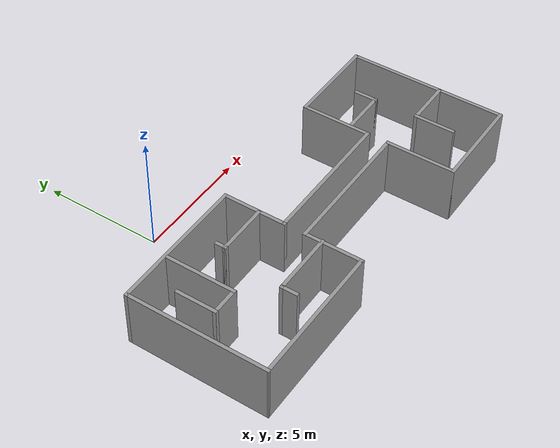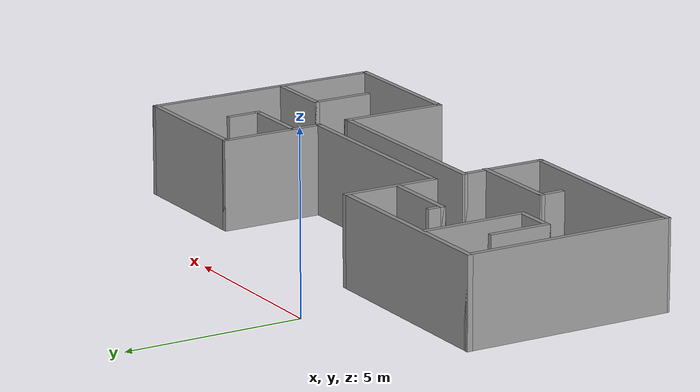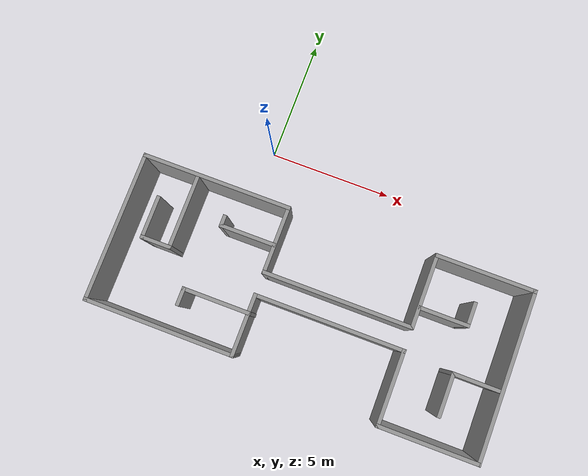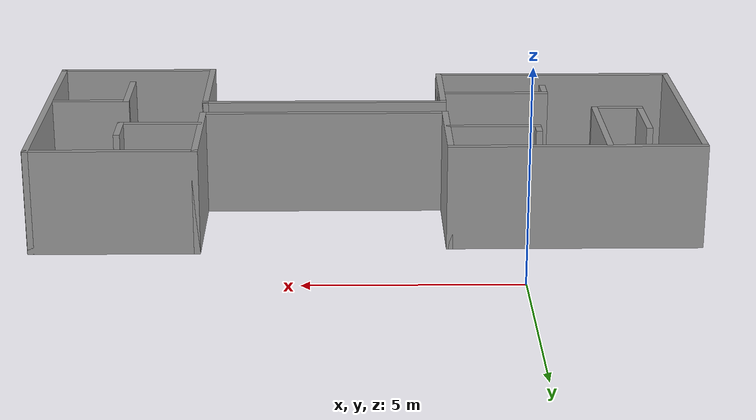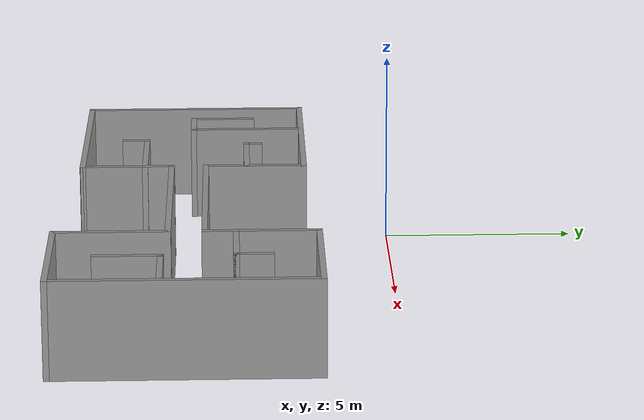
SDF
<?xml version='1.0'?>
<sdf version='1.7'>
  <model name='room'>
    <pose>3.51488 -4.3575 0 0 -0 0</pose>
    <link name='Wall_0'>
      <collision name='Wall_0_Collision'>
        <geometry>
          <box>
            <size>6 0.15 2.5</size>
          </box>
        </geometry>
        <pose>0 0 1.25 0 -0 0</pose>
      </collision>
      <visual name='Wall_0_Visual'>
        <pose>0 0 1.25 0 -0 0</pose>
        <geometry>
          <box>
            <size>6 0.15 2.5</size>
          </box>
        </geometry>
        <material>
          <script>
            <uri>file://media/materials/scripts/gazebo.material</uri>
            <name>Gazebo/Grey</name>
          </script>
          <ambient>1 1 1 1</ambient>
        </material>
        <meta>
          <layer>0</layer>
        </meta>
      </visual>
      <pose>-4.84988 2.0775 0 0 -0 0</pose>
    </link>
    <link name='Wall_10'>
      <collision name='Wall_10_Collision'>
        <geometry>
          <box>
            <size>6 0.15 2.5</size>
          </box>
        </geometry>
        <pose>0 0 1.25 0 -0 0</pose>
      </collision>
      <visual name='Wall_10_Visual'>
        <pose>0 0 1.25 0 -0 0</pose>
        <geometry>
          <box>
            <size>6 0.15 2.5</size>
          </box>
        </geometry>
        <material>
          <script>
            <uri>file://media/materials/scripts/gazebo.material</uri>
            <name>Gazebo/Grey</name>
          </script>
          <ambient>1 1 1 1</ambient>
        </material>
        <meta>
          <layer>0</layer>
        </meta>
      </visual>
      <pose>1.00012 -0.5225 0 0 -0 0</pose>
    </link>
    <link name='Wall_18'>
      <collision name='Wall_18_Collision'>
        <geometry>
          <box>
            <size>6 0.15 2.5</size>
          </box>
        </geometry>
        <pose>0 0 1.25 0 -0 0</pose>
      </collision>
      <visual name='Wall_18_Visual'>
        <pose>0 0 1.25 0 -0 0</pose>
        <geometry>
          <box>
            <size>6 0.15 2.5</size>
          </box>
        </geometry>
        <material>
          <script>
            <uri>file://media/materials/scripts/gazebo.material</uri>
            <name>Gazebo/Grey</name>
          </script>
          <ambient>1 1 1 1</ambient>
        </material>
        <meta>
          <layer>0</layer>
        </meta>
      </visual>
      <pose>1.00012 -1.4325 0 0 -0 0</pose>
    </link>
    <link name='Wall_2'>
      <collision name='Wall_2_Collision'>
        <geometry>
          <box>
            <size>6 0.15 2.5</size>
          </box>
        </geometry>
        <pose>0 0 1.25 0 -0 0</pose>
      </collision>
      <visual name='Wall_2_Visual'>
        <pose>0 0 1.25 0 -0 0</pose>
        <geometry>
          <box>
            <size>6 0.15 2.5</size>
          </box>
        </geometry>
        <material>
          <script>
            <uri>file://media/materials/scripts/gazebo.material</uri>
            <name>Gazebo/Grey</name>
          </script>
          <ambient>1 1 1 1</ambient>
        </material>
        <meta>
          <layer>0</layer>
        </meta>
      </visual>
      <pose>-7.77488 -0.8475 0 0 -0 -1.5708</pose>
    </link>
    <link name='Wall_20'>
      <collision name='Wall_20_Collision'>
        <geometry>
          <box>
            <size>3 0.15 2.5</size>
          </box>
        </geometry>
        <pose>0 0 1.25 0 -0 0</pose>
      </collision>
      <visual name='Wall_20_Visual'>
        <pose>0 0 1.25 0 -0 0</pose>
        <geometry>
          <box>
            <size>3 0.15 2.5</size>
          </box>
        </geometry>
        <material>
          <script>
            <uri>file://media/materials/scripts/gazebo.material</uri>
            <name>Gazebo/Grey</name>
          </script>
          <ambient>1 1 1 1</ambient>
        </material>
        <meta>
          <layer>0</layer>
        </meta>
      </visual>
      <pose>3.92512 -2.8575 0 0 -0 -1.5708</pose>
    </link>
    <link name='Wall_21'>
      <collision name='Wall_21_Collision'>
        <geometry>
          <box>
            <size>4 0.15 2.5</size>
          </box>
        </geometry>
        <pose>0 0 1.25 0 -0 0</pose>
      </collision>
      <visual name='Wall_21_Visual'>
        <pose>0 0 1.25 0 -0 0</pose>
        <geometry>
          <box>
            <size>4 0.15 2.5</size>
          </box>
        </geometry>
        <material>
          <script>
            <uri>file://media/materials/scripts/gazebo.material</uri>
            <name>Gazebo/Grey</name>
          </script>
          <ambient>1 1 1 1</ambient>
        </material>
        <meta>
          <layer>0</layer>
        </meta>
      </visual>
      <pose>5.85012 -4.2825 0 0 -0 0</pose>
    </link>
    <link name='Wall_23'>
      <collision name='Wall_23_Collision'>
        <geometry>
          <box>
            <size>3 0.15 2.5</size>
          </box>
        </geometry>
        <pose>0 0 1.25 0 -0 0</pose>
      </collision>
      <visual name='Wall_23_Visual'>
        <pose>0 0 1.25 0 -0 0</pose>
        <geometry>
          <box>
            <size>3 0.15 2.5</size>
          </box>
        </geometry>
        <material>
          <script>
            <uri>file://media/materials/scripts/gazebo.material</uri>
            <name>Gazebo/Grey</name>
          </script>
          <ambient>1 1 1 1</ambient>
        </material>
        <meta>
          <layer>0</layer>
        </meta>
      </visual>
      <pose>3.92512 0.9025 0 0 -0 1.5708</pose>
    </link>
    <link name='Wall_24'>
      <collision name='Wall_24_Collision'>
        <geometry>
          <box>
            <size>4 0.15 2.5</size>
          </box>
        </geometry>
        <pose>0 0 1.25 0 -0 0</pose>
      </collision>
      <visual name='Wall_24_Visual'>
        <pose>0 0 1.25 0 -0 0</pose>
        <geometry>
          <box>
            <size>4 0.15 2.5</size>
          </box>
        </geometry>
        <material>
          <script>
            <uri>file://media/materials/scripts/gazebo.material</uri>
            <name>Gazebo/Grey</name>
          </script>
          <ambient>1 1 1 1</ambient>
        </material>
        <meta>
          <layer>0</layer>
        </meta>
      </visual>
      <pose>5.85012 2.3275 0 0 -0 0</pose>
    </link>
    <link name='Wall_25'>
      <collision name='Wall_25_Collision'>
        <geometry>
          <box>
            <size>6.75 0.15 2.5</size>
          </box>
        </geometry>
        <pose>0 0 1.25 0 -0 0</pose>
      </collision>
      <visual name='Wall_25_Visual'>
        <pose>0 0 1.25 0 -0 0</pose>
        <geometry>
          <box>
            <size>6.75 0.15 2.5</size>
          </box>
        </geometry>
        <material>
          <script>
            <uri>file://media/materials/scripts/gazebo.material</uri>
            <name>Gazebo/Grey</name>
          </script>
          <ambient>1 1 1 1</ambient>
        </material>
        <meta>
          <layer>0</layer>
        </meta>
      </visual>
      <pose>7.77512 -0.9725 0 0 -0 -1.5708</pose>
    </link>
    <link name='Wall_27'>
      <collision name='Wall_27_Collision'>
        <geometry>
          <box>
            <size>3 0.15 2.5</size>
          </box>
        </geometry>
        <pose>0 0 1.25 0 -0 0</pose>
      </collision>
      <visual name='Wall_27_Visual'>
        <pose>0 0 1.25 0 -0 0</pose>
        <geometry>
          <box>
            <size>3 0.15 2.5</size>
          </box>
        </geometry>
        <material>
          <script>
            <uri>file://media/materials/scripts/gazebo.material</uri>
            <name>Gazebo/Grey</name>
          </script>
          <ambient>1 1 1 1</ambient>
        </material>
        <meta>
          <layer>0</layer>
        </meta>
      </visual>
      <pose>-5.58934 0.540332 0 0 -0 -1.5708</pose>
    </link>
    <link name='Wall_28'>
      <collision name='Wall_28_Collision'>
        <geometry>
          <box>
            <size>1.25 0.15 2.5</size>
          </box>
        </geometry>
        <pose>0 0 1.25 0 -0 0</pose>
      </collision>
      <visual name='Wall_28_Visual'>
        <pose>0 0 1.25 0 -0 0</pose>
        <geometry>
          <box>
            <size>1.25 0.15 2.5</size>
          </box>
        </geometry>
        <material>
          <script>
            <uri>file://media/materials/scripts/gazebo.material</uri>
            <name>Gazebo/Grey</name>
          </script>
          <ambient>1 1 1 1</ambient>
        </material>
        <meta>
          <layer>0</layer>
        </meta>
      </visual>
      <pose>-6.13934 -0.884668 0 0 -0 3.14159</pose>
    </link>
    <link name='Wall_29'>
      <collision name='Wall_29_Collision'>
        <geometry>
          <box>
            <size>1.75 0.15 2.5</size>
          </box>
        </geometry>
        <pose>0 0 1.25 0 -0 0</pose>
      </collision>
      <visual name='Wall_29_Visual'>
        <pose>0 0 1.25 0 -0 0</pose>
        <geometry>
          <box>
            <size>1.75 0.15 2.5</size>
          </box>
        </geometry>
        <material>
          <script>
            <uri>file://media/materials/scripts/gazebo.material</uri>
            <name>Gazebo/Grey</name>
          </script>
          <ambient>1 1 1 1</ambient>
        </material>
        <meta>
          <layer>0</layer>
        </meta>
      </visual>
      <pose>-6.68934 -0.084668 0 0 -0 1.5708</pose>
    </link>
    <link name='Wall_31'>
      <collision name='Wall_31_Collision'>
        <geometry>
          <box>
            <size>2.75 0.15 2.5</size>
          </box>
        </geometry>
        <pose>0 0 1.25 0 -0 0</pose>
      </collision>
      <visual name='Wall_31_Visual'>
        <pose>0 0 1.25 0 -0 0</pose>
        <geometry>
          <box>
            <size>2.75 0.15 2.5</size>
          </box>
        </geometry>
        <material>
          <script>
            <uri>file://media/materials/scripts/gazebo.material</uri>
            <name>Gazebo/Grey</name>
          </script>
          <ambient>1 1 1 1</ambient>
        </material>
        <meta>
          <layer>0</layer>
        </meta>
      </visual>
      <pose>-3.19784 -2.14017 0 0 -0 3.14159</pose>
    </link>
    <link name='Wall_32'>
      <collision name='Wall_32_Collision'>
        <geometry>
          <box>
            <size>0.75 0.15 2.5</size>
          </box>
        </geometry>
        <pose>0 0 1.25 0 -0 0</pose>
      </collision>
      <visual name='Wall_32_Visual'>
        <pose>0 0 1.25 0 -0 0</pose>
        <geometry>
          <box>
            <size>0.75 0.15 2.5</size>
          </box>
        </geometry>
        <material>
          <script>
            <uri>file://media/materials/scripts/gazebo.material</uri>
            <name>Gazebo/Grey</name>
          </script>
          <ambient>1 1 1 1</ambient>
        </material>
        <meta>
          <layer>0</layer>
        </meta>
      </visual>
      <pose>-4.49784 -2.44017 0 0 -0 -1.5708</pose>
    </link>
    <link name='Wall_34'>
      <collision name='Wall_34_Collision'>
        <geometry>
          <box>
            <size>2.25 0.15 2.5</size>
          </box>
        </geometry>
        <pose>0 0 1.25 0 -0 0</pose>
      </collision>
      <visual name='Wall_34_Visual'>
        <pose>0 0 1.25 0 -0 0</pose>
        <geometry>
          <box>
            <size>2.25 0.15 2.5</size>
          </box>
        </geometry>
        <material>
          <script>
            <uri>file://media/materials/scripts/gazebo.material</uri>
            <name>Gazebo/Grey</name>
          </script>
          <ambient>1 1 1 1</ambient>
        </material>
        <meta>
          <layer>0</layer>
        </meta>
      </visual>
      <pose>-3.01684 0.562332 0 0 -0 3.14159</pose>
    </link>
    <link name='Wall_35'>
      <collision name='Wall_35_Collision'>
        <geometry>
          <box>
            <size>0.5 0.15 2.5</size>
          </box>
        </geometry>
        <pose>0 0 1.25 0 -0 0</pose>
      </collision>
      <visual name='Wall_35_Visual'>
        <pose>0 0 1.25 0 -0 0</pose>
        <geometry>
          <box>
            <size>0.5 0.15 2.5</size>
          </box>
        </geometry>
        <material>
          <script>
            <uri>file://media/materials/scripts/gazebo.material</uri>
            <name>Gazebo/Grey</name>
          </script>
          <ambient>1 1 1 1</ambient>
        </material>
        <meta>
          <layer>0</layer>
        </meta>
      </visual>
      <pose>-4.06684 0.737332 0 0 -0 1.5708</pose>
    </link>
    <link name='Wall_37'>
      <collision name='Wall_37_Collision'>
        <geometry>
          <box>
            <size>2 0.15 2.5</size>
          </box>
        </geometry>
        <pose>0 0 1.25 0 -0 0</pose>
      </collision>
      <visual name='Wall_37_Visual'>
        <pose>0 0 1.25 0 -0 0</pose>
        <geometry>
          <box>
            <size>2 0.15 2.5</size>
          </box>
        </geometry>
        <material>
          <script>
            <uri>file://media/materials/scripts/gazebo.material</uri>
            <name>Gazebo/Grey</name>
          </script>
          <ambient>1 1 1 1</ambient>
        </material>
        <meta>
          <layer>0</layer>
        </meta>
      </visual>
      <pose>4.90366 0.263332 0 0 -0 0</pose>
    </link>
    <link name='Wall_38'>
      <collision name='Wall_38_Collision'>
        <geometry>
          <box>
            <size>1 0.15 2.5</size>
          </box>
        </geometry>
        <pose>0 0 1.25 0 -0 0</pose>
      </collision>
      <visual name='Wall_38_Visual'>
        <pose>0 0 1.25 0 -0 0</pose>
        <geometry>
          <box>
            <size>1 0.15 2.5</size>
          </box>
        </geometry>
        <material>
          <script>
            <uri>file://media/materials/scripts/gazebo.material</uri>
            <name>Gazebo/Grey</name>
          </script>
          <ambient>1 1 1 1</ambient>
        </material>
        <meta>
          <layer>0</layer>
        </meta>
      </visual>
      <pose>5.82866 0.688332 0 0 -0 1.5708</pose>
    </link>
    <link name='Wall_4'>
      <collision name='Wall_4_Collision'>
        <geometry>
          <box>
            <size>6 0.15 2.5</size>
          </box>
        </geometry>
        <pose>0 0 1.25 0 -0 0</pose>
      </collision>
      <visual name='Wall_4_Visual'>
        <pose>0 0 1.25 0 -0 0</pose>
        <geometry>
          <box>
            <size>6 0.15 2.5</size>
          </box>
        </geometry>
        <material>
          <script>
            <uri>file://media/materials/scripts/gazebo.material</uri>
            <name>Gazebo/Grey</name>
          </script>
          <ambient>1 1 1 1</ambient>
        </material>
        <meta>
          <layer>0</layer>
        </meta>
      </visual>
      <pose>-4.84988 -3.7825 0 0 -0 -0.003419</pose>
    </link>
    <link name='Wall_41'>
      <collision name='Wall_41_Collision'>
        <geometry>
          <box>
            <size>2 0.15 2.5</size>
          </box>
        </geometry>
        <pose>0 0 1.25 0 -0 0</pose>
      </collision>
      <visual name='Wall_41_Visual'>
        <pose>0 0 1.25 0 -0 0</pose>
        <geometry>
          <box>
            <size>2 0.15 2.5</size>
          </box>
        </geometry>
        <material>
          <script>
            <uri>file://media/materials/scripts/gazebo.material</uri>
            <name>Gazebo/Grey</name>
          </script>
          <ambient>1 1 1 1</ambient>
        </material>
        <meta>
          <layer>0</layer>
        </meta>
      </visual>
      <pose>6.81416 -1.57667 0 0 -0 3.14159</pose>
    </link>
    <link name='Wall_42'>
      <collision name='Wall_42_Collision'>
        <geometry>
          <box>
            <size>1.75 0.15 2.5</size>
          </box>
        </geometry>
        <pose>0 0 1.25 0 -0 0</pose>
      </collision>
      <visual name='Wall_42_Visual'>
        <pose>0 0 1.25 0 -0 0</pose>
        <geometry>
          <box>
            <size>1.75 0.15 2.5</size>
          </box>
        </geometry>
        <material>
          <script>
            <uri>file://media/materials/scripts/gazebo.material</uri>
            <name>Gazebo/Grey</name>
          </script>
          <ambient>1 1 1 1</ambient>
        </material>
        <meta>
          <layer>0</layer>
        </meta>
      </visual>
      <pose>5.88916 -2.37667 0 0 -0 -1.5708</pose>
    </link>
    <link name='Wall_6'>
      <collision name='Wall_6_Collision'>
        <geometry>
          <box>
            <size>2.5 0.15 2.5</size>
          </box>
        </geometry>
        <pose>0 0 1.25 0 -0 0</pose>
      </collision>
      <visual name='Wall_6_Visual'>
        <pose>0 0 1.25 0 -0 0</pose>
        <geometry>
          <box>
            <size>2.5 0.15 2.5</size>
          </box>
        </geometry>
        <material>
          <script>
            <uri>file://media/materials/scripts/gazebo.material</uri>
            <name>Gazebo/Grey</name>
          </script>
          <ambient>1 1 1 1</ambient>
        </material>
        <meta>
          <layer>0</layer>
        </meta>
      </visual>
      <pose>-1.92488 -2.6075 0 0 -0 1.5708</pose>
    </link>
    <link name='Wall_8'>
      <collision name='Wall_8_Collision'>
        <geometry>
          <box>
            <size>2.75 0.15 2.5</size>
          </box>
        </geometry>
        <pose>0 0 1.25 0 -0 0</pose>
      </collision>
      <visual name='Wall_8_Visual'>
        <pose>0 0 1.25 0 -0 0</pose>
        <geometry>
          <box>
            <size>2.75 0.15 2.5</size>
          </box>
        </geometry>
        <material>
          <script>
            <uri>file://media/materials/scripts/gazebo.material</uri>
            <name>Gazebo/Grey</name>
          </script>
          <ambient>1 1 1 1</ambient>
        </material>
        <meta>
          <layer>0</layer>
        </meta>
      </visual>
      <pose>-1.92488 0.7775 0 0 -0 -1.5708</pose>
    </link>
    <static>false</static>
  </model>
</sdf>
